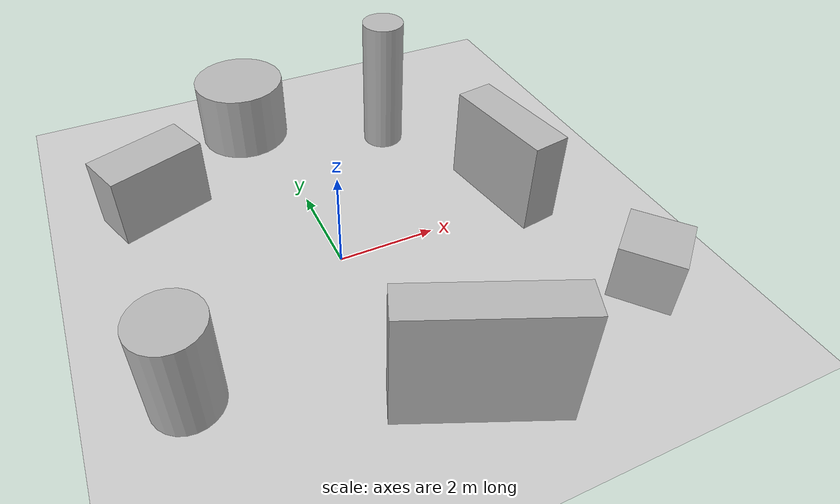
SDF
<sdf version="1.10">
 <world name="mid360_test">
  <physics name="1ms" type="ignored">
   <max_step_size>0.001</max_step_size>
   <real_time_factor>1.0</real_time_factor>
   <dart><collision_detector>bullet</collision_detector></dart>
  </physics>
  <plugin filename="gz-sim-physics-system" name="gz::sim::systems::Physics"/>
  <plugin filename="gz-sim-sensors-system" name="gz::sim::systems::Sensors">
   <render_engine>ogre2</render_engine>
  </plugin>
  <plugin filename="gz-sim-imu-system" name="gz::sim::systems::Imu"/>
  <plugin filename="gz-sim-scene-broadcaster-system" name="gz::sim::systems::SceneBroadcaster"/>
  <plugin filename="librmagine_embree_map_system.so" name="rmagine_gazebo_plugins::RmagineEmbreeMapSystem">
   <update><rate_limit>30</rate_limit><delta_trans>0.001</delta_trans><delta_rot>0.001</delta_rot></update>
  </plugin>
  <light name="sun" type="directional">
   <pose>0 0 10 0 0 0</pose>
   <diffuse>0.8 0.8 0.8 1</diffuse>
   <specular>0.2 0.2 0.2 1</specular>
   <direction>-0.5 0.1 -0.9</direction>
  </light>
  <model name="ground_plane">
   <static>true</static>
   <link name="link">
    <collision name="collision">
     <geometry><plane><normal>0 0 1</normal><size>100 100</size></plane></geometry>
    </collision>
    <visual name="visual"><geometry><plane><normal>0 0 1</normal><size>100 100</size></plane></geometry></visual>
   </link>
  </model>
  <model name="box_east">
   <static>true</static>
   <pose>4 0.5 1.0 0 0 0.15</pose>
   <link name="link">
    <collision name="collision"><geometry><box><size>0.8 2.4 2.0</size></box></geometry></collision>
    <visual name="visual"><geometry><box><size>0.8 2.4 2.0</size></box></geometry></visual>
   </link>
  </model>
  <model name="box_northwest">
   <static>true</static>
   <pose>-3.0 3.0 0.75 0 0 0.35</pose>
   <link name="link">
    <collision name="collision"><geometry><box><size>2.0 1.0 1.5</size></box></geometry></collision>
    <visual name="visual"><geometry><box><size>2.0 1.0 1.5</size></box></geometry></visual>
   </link>
  </model>
  <model name="box_south">
   <static>true</static>
   <pose>0.8 -4.0 1.25 0 0 -0.4</pose>
   <link name="link">
    <collision name="collision"><geometry><box><size>3.0 0.7 2.5</size></box></geometry></collision>
    <visual name="visual"><geometry><box><size>3.0 0.7 2.5</size></box></geometry></visual>
   </link>
  </model>
  <model name="box_southeast">
   <static>true</static>
   <pose>5.0 -3.0 0.6 0 0 0.7</pose>
   <link name="link">
    <collision name="collision"><geometry><box><size>1.2 1.2 1.2</size></box></geometry></collision>
    <visual name="visual"><geometry><box><size>1.2 1.2 1.2</size></box></geometry></visual>
   </link>
  </model>
  <model name="cylinder_southwest">
   <static>true</static>
   <pose>-3.5 -2.0 1.0 0 0 0</pose>
   <link name="link">
    <collision name="collision">
     <geometry><cylinder><radius>0.65</radius><length>2.0</length></cylinder></geometry>
    </collision>
    <visual name="visual">
     <geometry><cylinder><radius>0.65</radius><length>2.0</length></cylinder></geometry>
    </visual>
   </link>
  </model>
  <model name="cylinder_northeast">
   <static>true</static>
   <pose>2.5 3.5 1.5 0 0 0</pose>
   <link name="link">
    <collision name="collision">
     <geometry><cylinder><radius>0.45</radius><length>3.0</length></cylinder></geometry>
    </collision>
    <visual name="visual">
     <geometry><cylinder><radius>0.45</radius><length>3.0</length></cylinder></geometry>
    </visual>
   </link>
  </model>
  <model name="cylinder_north">
   <static>true</static>
   <pose>-0.5 5.0 0.75 0 0 0</pose>
   <link name="link">
    <collision name="collision">
     <geometry><cylinder><radius>1.0</radius><length>1.5</length></cylinder></geometry>
    </collision>
    <visual name="visual">
     <geometry><cylinder><radius>1.0</radius><length>1.5</length></cylinder></geometry>
    </visual>
   </link>
  </model>
 </world>
</sdf>
